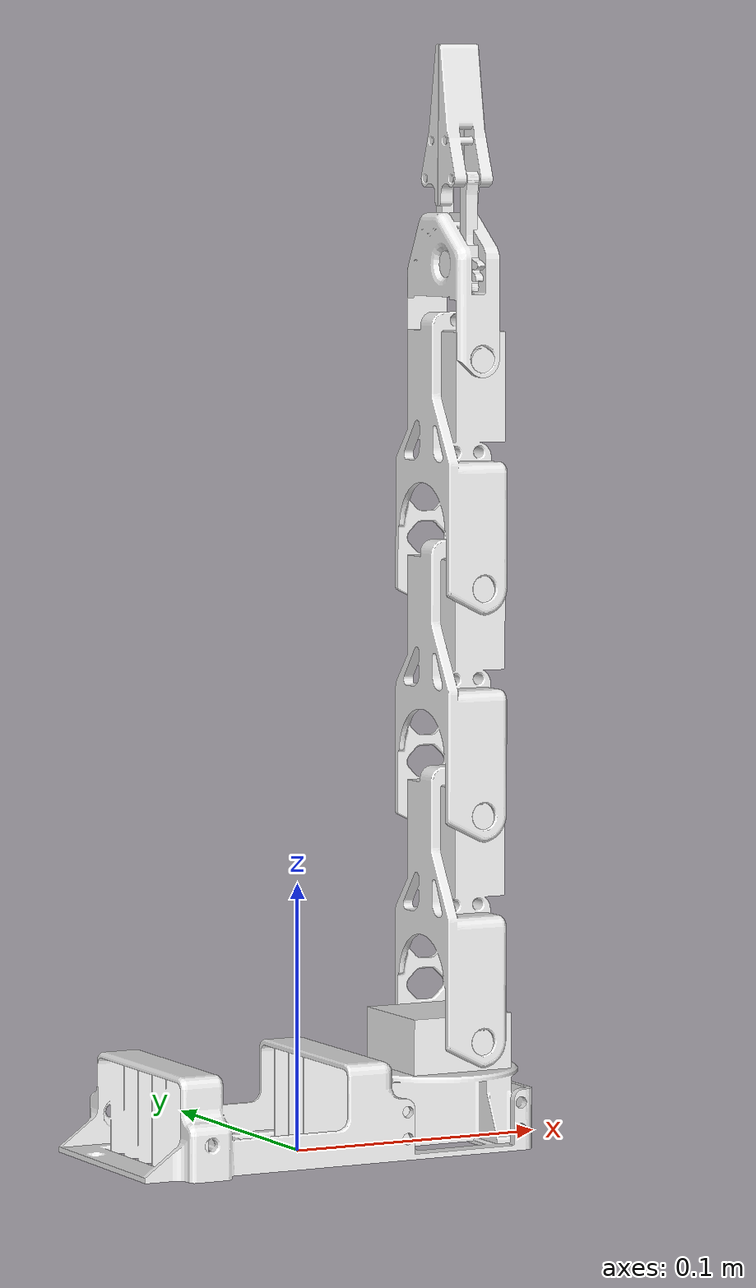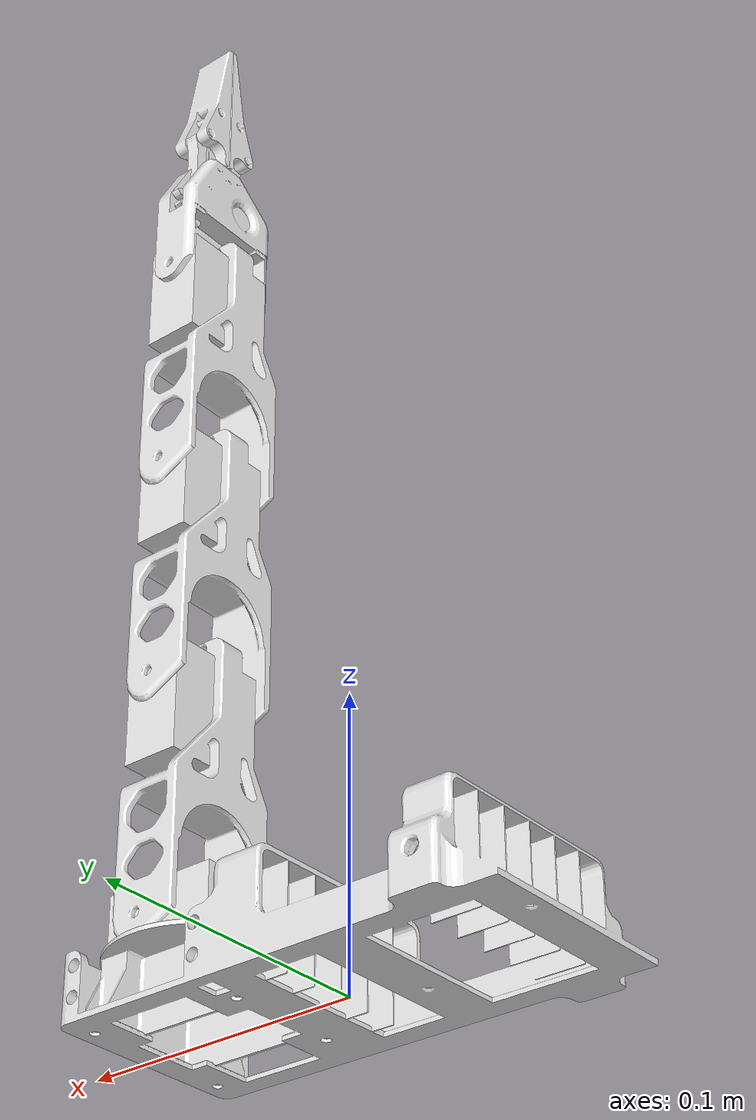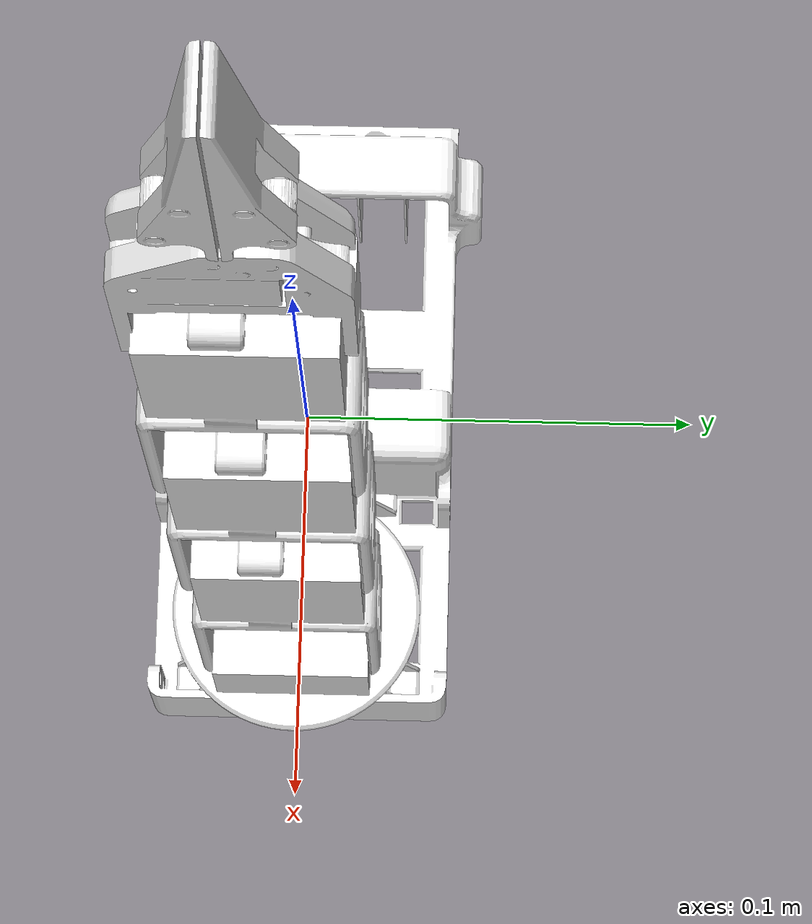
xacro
<?xml version="1.0"?>
<!-- 5 DOF Revolute Manipulator -->
<robot xmlns:xacro="http://www.ros.org/wiki/xacro" name="rarm" >

  <xacro:property name="PI" value="3.1415926535897931"/>
  <xacro:property name="mass" value="1" />        <!-- arbitrary value for mass -->
  <xacro:property name="b_length" value="0.1609" />  <!-- base length -->
  <xacro:property name="b_width" value="0.089" />  <!-- base width -->
  <xacro:property name="b_height" value="0.0369" /> <!-- base height -->

  <xacro:property name="radius" value="0.031" />  <!-- platform radius -->
  <xacro:property name="plat_h" value="0.027" />   <!-- platform height -->

  <xacro:property name="l1l" value="0.041" />     <!-- manipulator link1 length -->
  <xacro:property name="l1w" value="0.038" />     <!-- manipulator link1 width -->
  <xacro:property name="l1h" value="0.021" />     <!-- manipulator link1 height -->

  <xacro:property name="shift" value="0.005" />   <!-- links mesh displacement -->

  <xacro:property name="length" value="0.09" />   <!-- manipulator links length -->
  <xacro:property name="width" value="0.0436" />  <!-- manipulator links width -->
  <xacro:property name="height" value="0.025" />  <!-- manipulator links height -->

  <xacro:property name="grip_l" value="0.049" />  <!-- gripper servo's link length -->
  <xacro:property name="grip_w" value="0.024" />  <!-- gripper servo's link width -->
  <xacro:property name="grip_h" value="0.0168" /> <!-- gripper servo's link height -->

  <xacro:property name="finger0_l" value="0.0459" />    <!-- gripper link0 length -->
  <xacro:property name="finger0_w" value="0.018" />     <!-- gripper link0 width -->
  <xacro:property name="finger0_h" value="0.0049" />    <!-- gripper link0 height -->

  <xacro:property name="finger1_l" value="0.06" />      <!-- gripper link1 length -->
  <xacro:property name="finger1_w" value="0.013" />     <!-- gripper link1 width -->
  <xacro:property name="finger1_h" value="0.016" />     <!-- gripper link1 height -->

  <xacro:property name="grip_jnt_0_x" value="0.007" />  <!-- gripper's joint_0 x-axis displacement -->
  <xacro:property name="grip_jnt_1_x" value="0.013" />  <!-- gripper's joint_1 x-axis displacement -->
  <xacro:property name="grip_jnt_1_y" value="0.002" />  <!-- gripper's joint_1 y-axis displacement -->

  <!-- Import all Gazebo-customization elements, including Gazebo colors -->
  <xacro:include filename="$(find rarm_description)/urdf/rarm.gazebo" />

  <!-- Used for fixing robot to Gazebo 'base_link' -->
  <link name="world"/>

  <!-- Base Link -->
  <link name="base">
    <collision>
      <origin xyz="0 0 ${b_height/2}" rpy="0 0 0"/>
      <geometry>
	<box size="${b_length} ${b_width} ${b_height}"/>
      </geometry>
    </collision>

    <visual>
      <origin xyz="0 0 ${b_height/2}" rpy="0 0 0"/>
      <geometry>
	<!-- box size="${b_length} ${b_width} ${b_height}"/ -->
        <mesh filename="package://rarm_description/meshes/base.dae" scale="0.001 0.001 0.001"/>
      </geometry>
    </visual>

    <inertial>
      <origin xyz="0 0 ${b_height/2}" rpy="0 0 0"/>
      <mass value="${mass}"/>
      <inertia
	  ixx="1.0" ixy="0.0" ixz="0.0"
	  iyy="1.0" iyz="0.0"
	  izz="1.0"/>
    </inertial>
  </link>

  <joint name="fixed1" type="fixed">
    <parent link="world"/>
    <child link="base"/>
  </joint>

  <link name="platform">
    <collision>
    <origin xyz="0 0 0" rpy="0 0 0"/>
      <geometry>
        <cylinder radius="${radius}" length="${plat_h}"/>
      </geometry>
    </collision>

    <visual>
      <origin xyz="-0.006 0 0" rpy="0 0 0"/>
      <geometry>
	<!-- cylinder radius="${radius}" length="${plat_h}"/ -->
        <mesh filename="package://rarm_description/meshes/platform.dae" scale="0.001 0.001 0.001"/>
      </geometry>
    </visual>

    <inertial>
      <origin xyz="0 0 0" rpy="0 0 0"/>
      <mass value="${mass}"/>
      <inertia
	  ixx="1.0" ixy="0.0" ixz="0.0"
	  iyy="1.0" iyz="0.0"
	  izz="1.0"/>
    </inertial>
  </link>

  <joint name="fixed2" type="fixed">
    <axis xyz="0 0 1"/>
    <parent link="base"/>
    <child link="platform"/>
    <origin xyz="${b_length/2 - radius + 0.010} 0 ${b_height/2 - 0.004}" rpy="0 0 0"/>
    <!-- limit effort="100" velocity="100" / -->
    <!-- joint_properties damping="0.0" friction="0.0" / -->
  </joint>

<!-- Manipulator block -->
  <link name="link1">
    <collision>
      <origin xyz="0 0 0" rpy="0 ${PI/2} 0"/>
      <geometry>
	<box size="${l1h} ${l1w} ${l1l}"/>
      </geometry>
    </collision>

    <visual>
      <origin xyz="0 0 0" rpy="0 0 0"/>
      <geometry>
	<!-- box size="${l1h} ${l1w} ${l1l}"/ -->
        <mesh filename="package://rarm_description/meshes/servo.dae" scale="0.001 0.001 0.001"/>
      </geometry>
    </visual>

    <inertial>
      <origin xyz="0 0 0" rpy="0 ${PI/2} 0"/>
      <mass value="${mass}"/>
      <inertia
	  ixx="1.0" ixy="0.0" ixz="0.0"
	  iyy="1.0" iyz="0.0"
	  izz="1.0"/>
    </inertial>
  </link>

  <joint name="joint1" type="revolute">
    <axis xyz="0 0 1"/>
    <parent link="platform"/>
    <child link="link1"/>
    <origin xyz="0 0 ${l1h/2 + plat_h/2}" rpy="0 0 0"/>
    <limit lower="${-pi*3/4}" upper="${pi*3/4}" effort="1000" velocity="10" />
    <joint_properties damping="0.0" friction="0.0" />
  </joint>

  <link name="link2">
    <collision>
      <origin xyz="${length/2} 0 0" rpy="${PI/2} 0 0"/>
      <geometry>
	<box size="${length} ${width} ${height}"/>
      </geometry>
    </collision>

    <visual>
      <origin xyz="${length/2 + 0.002} -0.002 0" rpy="${PI/2} 0 0"/>
      <geometry>
	<!-- box size="${length} ${width} ${height}"/ -->
        <mesh filename="package://rarm_description/meshes/links.dae" scale="0.001 0.001 0.001"/>
      </geometry>
    </visual>

    <inertial>
      <origin xyz="${length/2} 0 0" rpy="${PI/2} 0 0"/>
      <mass value="${mass}"/>
      <inertia
	  ixx="1.0" ixy="0.0" ixz="0.0"
	  iyy="1.0" iyz="0.0"
	  izz="1.0"/>
    </inertial>
  </link>

  <joint name="joint2" type="revolute">
    <axis xyz="0 0 1"/>
    <parent link="link1"/>
    <child link="link2"/>
    <origin xyz="0.007 0 0" rpy="${-PI/2} ${-PI/2} 0"/>
    <limit lower="${-pi*3/4}" upper="${pi*3/4}" effort="1000" velocity="10" />
    <joint_properties damping="0.0" friction="0.0" />
  </joint>

  <link name="link3">
    <collision>
      <origin xyz="${length/2} 0 0" rpy="${PI/2} 0 0"/>
      <geometry>
	<box size="${length} ${width} ${height}"/>
      </geometry>
    </collision>

    <visual>
      <origin xyz="${length/2 + 0.002} -0.002 0" rpy="${PI/2} 0 0"/>
      <geometry>
	<!-- box size="${length} ${width} ${height}"/ -->
        <mesh filename="package://rarm_description/meshes/links.dae" scale="0.001 0.001 0.001"/>
      </geometry>
    </visual>

    <inertial>
      <origin xyz="${length/2} 0 0" rpy="${PI/2} 0 0"/>
      <mass value="${mass}"/>
      <inertia
	  ixx="1.0" ixy="0.0" ixz="0.0"
	  iyy="1.0" iyz="0.0"
	  izz="1.0"/>
    </inertial>
  </link>

  <joint name="joint3" type="revolute">
    <axis xyz="0 0 1"/>
    <parent link="link2"/>
    <child link="link3"/>
    <origin xyz="${length - shift} 0 0" rpy="0 0 0"/>
    <limit lower="${-pi*3/4}" upper="${pi*3/4}" effort="1000" velocity="10" />
    <joint_properties damping="0.0" friction="0.0" />
  </joint>

  <link name="link4">
    <collision>
      <origin xyz="${length/2} 0 0" rpy="${PI/2} 0 0"/>
      <geometry>
	<box size="${length} ${width} ${height}"/>
      </geometry>
    </collision>

    <visual>
      <origin xyz="${length/2 + 0.002} -0.002 0" rpy="${PI/2} 0 0"/>
      <geometry>
	<!-- box size="${length} ${width} ${height}"/ -->
	<mesh filename="package://rarm_description/meshes/links.dae" scale="0.001 0.001 0.001"/>
      </geometry>
    </visual>

    <inertial>
      <origin xyz="${length/2} 0 0" rpy="${PI/2} 0 0"/>
      <mass value="${mass}"/>
      <inertia
	  ixx="1.0" ixy="0.0" ixz="0.0"
	  iyy="1.0" iyz="0.0"
	  izz="1.0"/>
    </inertial>
  </link>

  <joint name="joint4" type="revolute">
    <axis xyz="0 0 1"/>
    <parent link="link3"/>
    <child link="link4"/>
    <origin xyz="${length - shift} 0 0" rpy="0 0 0"/>
    <limit lower="${-pi*3/4}" upper="${pi*3/4}" effort="1000" velocity="10" />
    <joint_properties damping="0.0" friction="0.0" />
  </joint>

  <link name="link5">
    <collision>
     <origin xyz="${grip_l/2} 0 0" rpy="${PI/2} 0 0"/>
      <geometry>
	<box size="${grip_l} ${grip_w} ${grip_h}"/>
      </geometry>
    </collision>

    <visual>
      <origin xyz="${grip_l/2} -0.002 0" rpy="${PI/2} 0 0"/>
      <geometry>
	<!-- box size="${grip_l} ${grip_w} ${grip_h}"/ -->
        <mesh filename="package://rarm_description/meshes/gripper.dae" scale="0.001 0.001 0.001"/>
      </geometry>
    </visual>

    <inertial>
      <origin xyz="${grip_l/2} 0 0" rpy="${PI/2} 0 0"/>
      <mass value="${mass}"/>
      <inertia
	  ixx="1.0" ixy="0.0" ixz="0.0"
	  iyy="1.0" iyz="0.0"
	  izz="1.0"/>
    </inertial>
  </link>

  <joint name="joint5" type="revolute">
    <axis xyz="0 0 1"/>
    <parent link="link4"/>
    <child link="link5"/>
    <origin xyz="${length - shift} 0 0" rpy="0 0 0"/>
    <limit lower="${-pi*3/4}" upper="${pi*3/4}" effort="1000" velocity="10" />
    <joint_properties damping="0.0" friction="0.0" />
  </joint>

<!-- Gripper block -->
  <link name="finger_l0">
    <collision>
     <origin xyz="${finger0_l/2 - grip_jnt_0_x} 0 0" rpy="0 0 0"/>
      <geometry>
	<box size="${finger0_l} ${finger0_w} ${finger0_h}"/>
      </geometry>
    </collision>

    <visual>
      <origin xyz="${finger0_l/2 - grip_jnt_0_x} 0 0" rpy="0 0 0"/>
      <geometry>
	<!-- box size="${finger0_l} ${finger0_w} ${finger0_h}"/ -->
        <mesh filename="package://rarm_description/meshes/l_finger_0.dae" scale="0.001 0.001 0.001"/>
      </geometry>
    </visual>

    <inertial>
      <origin xyz="${finger0_l/2 - grip_jnt_0_x} 0 0" rpy="0 0 0"/>
      <mass value="${mass}"/>
      <inertia
	  ixx="1.0" ixy="0.0" ixz="0.0"
	  iyy="1.0" iyz="0.0"
	  izz="1.0"/>
    </inertial>
  </link>

<!-- Main gripper joint -->
  <joint name="gripper_joint" type="revolute">
    <axis xyz="0 0 1"/>
    <parent link="link5"/>
    <child link="finger_l0"/>
    <origin xyz="${grip_l/2 + grip_jnt_0_x} 0 ${grip_w/2}" rpy="${PI/2} 0 0"/>
    <limit lower="0.0" upper="${pi/2}" effort="1000" velocity="10" />
    <joint_properties damping="0.0" friction="0.0" />
  </joint>

  <link name="finger_r0">
    <collision>
     <origin xyz="${finger0_l/2 - grip_jnt_0_x} 0 0" rpy="0 0 0"/>
      <geometry>
	<box size="${finger0_l} ${finger0_w} ${finger0_h}"/>
      </geometry>
    </collision>

    <visual>
      <origin xyz="${finger0_l/2 - grip_jnt_0_x} 0 0" rpy="${PI} 0 0"/>
      <geometry>
	<!-- box size="${finger0_l} ${finger0_w} ${finger0_h}"/ -->
        <mesh filename="package://rarm_description/meshes/l_finger_0.dae" scale="0.001 0.001 0.001"/>
      </geometry>
    </visual>

    <inertial>
      <origin xyz="${finger0_l/2 - grip_jnt_0_x} 0 0" rpy="0 0 0"/>
      <mass value="${mass}"/>
      <inertia
	  ixx="1.0" ixy="0.0" ixz="0.0"
	  iyy="1.0" iyz="0.0"
	  izz="1.0"/>
    </inertial>
  </link>

<!-- First mimic right -->
  <joint name="grp_joint_r" type="revolute">
    <axis xyz="0 0 1"/>
    <parent link="link5"/>
    <child link="finger_r0"/>
    <origin xyz="${grip_l/2 + grip_jnt_0_x} 0 ${-grip_w/2}" rpy="${PI/2} 0 0"/>
    <limit lower="${-PI/2}" upper="0.0" effort="1000" velocity="10" />
    <mimic joint="gripper_joint" multiplier="-1" />
    <joint_properties damping="0.0" friction="0.0" />
  </joint>

  <link name="finger_l1">
    <collision>
     <origin xyz="${finger1_l/2} 0 0" rpy="0 0 0"/>
      <geometry>
	<box size="${finger1_l} ${finger1_w} ${finger1_h}"/>
      </geometry>
    </collision>

    <visual>
      <origin xyz="${finger1_l/2 - 0.01} -0.0032 0" rpy="0 0 0"/>
      <geometry>
	<!-- box size="${finger1_l} ${finger1_w} ${finger1_h}"/ -->
        <mesh filename="package://rarm_description/meshes/l_finger_1.dae" scale="0.001 0.001 0.001"/>
      </geometry>
    </visual>

    <inertial>
      <origin xyz="${finger1_l/2} 0 0" rpy="0 0 0"/>
      <mass value="${mass}"/>
      <inertia
	  ixx="1.0" ixy="0.0" ixz="0.0"
	  iyy="1.0" iyz="0.0"
	  izz="1.0"/>
    </inertial>
  </link>

<!-- Second mimic left -->
  <joint name="finger_joint_l" type="revolute">
    <axis xyz="0 0 1"/>
    <parent link="finger_l0"/>
    <child link="finger_l1"/>
    <origin xyz="${grip_l - grip_jnt_1_x} ${-grip_jnt_1_y} 0" rpy="0 0 0"/>
    <limit lower="${-PI/2}" upper="0.0" effort="1000" velocity="10" />
    <mimic joint="gripper_joint" multiplier="-1" />
    <joint_properties damping="0.0" friction="0.0" />
  </joint>

  <link name="finger_r1">
    <collision>
     <origin xyz="${finger1_l/2} 0 0" rpy="0 0 0"/>
      <geometry>
	<box size="${finger1_l} ${finger1_w} ${finger1_h}"/>
      </geometry>
    </collision>

    <visual>
      <origin xyz="${finger1_l/2 - 0.01} 0.0032 0" rpy="${PI} 0 0"/>
      <geometry>
	<!-- box size="${finger1_l} ${finger1_w} ${finger1_h}"/ -->
        <mesh filename="package://rarm_description/meshes/l_finger_1.dae" scale="0.001 0.001 0.001"/>
      </geometry>
    </visual>

    <inertial>
      <origin xyz="${finger1_l/2} 0 0" rpy="0 0 0"/>
      <mass value="${mass}"/>
      <inertia
	  ixx="1.0" ixy="0.0" ixz="0.0"
	  iyy="1.0" iyz="0.0"
	  izz="1.0"/>
    </inertial>
  </link>

<!-- Second mimic right -->
  <joint name="finger_joint_r" type="revolute">
    <axis xyz="0 0 1"/>
    <parent link="finger_r0"/>
    <child link="finger_r1"/>
    <origin xyz="${grip_l - grip_jnt_1_x} ${grip_jnt_1_y} 0" rpy="0 0 0"/>
    <limit lower="0.0" upper="${PI/2}" effort="1000" velocity="10" />
    <mimic joint="gripper_joint" multiplier="1" />
    <joint_properties damping="0.0" friction="0.0" />
  </joint>

<!-- Transmissions block -->
  <transmission name="tran1">
    <type>transmission_interface/SimpleTransmission</type>
    <joint name="joint1">
      <hardwareInterface>hardware_interface/EffortJointInterface</hardwareInterface>
    </joint>
    <actuator name="motor1">
      <hardwareInterface>hardware_interface/EffortJointInterface</hardwareInterface>
      <mechanicalReduction>1</mechanicalReduction>
    </actuator>
  </transmission>

  <transmission name="tran2">
    <type>transmission_interface/SimpleTransmission</type>
    <joint name="joint2">
      <hardwareInterface>hardware_interface/EffortJointInterface</hardwareInterface>
    </joint>
    <actuator name="motor2">
      <hardwareInterface>hardware_interface/EffortJointInterface</hardwareInterface>
      <mechanicalReduction>1</mechanicalReduction>
    </actuator>
  </transmission>

  <transmission name="tran3">
    <type>transmission_interface/SimpleTransmission</type>
    <joint name="joint3">
      <hardwareInterface>hardware_interface/EffortJointInterface</hardwareInterface>
    </joint>
    <actuator name="motor3">
      <hardwareInterface>hardware_interface/EffortJointInterface</hardwareInterface>
      <mechanicalReduction>1</mechanicalReduction>
    </actuator>
  </transmission>

  <transmission name="tran4">
    <type>transmission_interface/SimpleTransmission</type>
    <joint name="joint4">
      <hardwareInterface>hardware_interface/EffortJointInterface</hardwareInterface>
    </joint>
    <actuator name="motor4">
      <hardwareInterface>hardware_interface/EffortJointInterface</hardwareInterface>
      <mechanicalReduction>1</mechanicalReduction>
    </actuator>
  </transmission>

  <transmission name="tran5">
    <type>transmission_interface/SimpleTransmission</type>
    <joint name="joint5">
      <hardwareInterface>hardware_interface/EffortJointInterface</hardwareInterface>
    </joint>
    <actuator name="motor5">
      <hardwareInterface>hardware_interface/EffortJointInterface</hardwareInterface>
      <mechanicalReduction>1</mechanicalReduction>
    </actuator>
  </transmission>

  <transmission name="tran6">
    <type>transmission_interface/SimpleTransmission</type>
    <joint name="gripper_joint">
      <hardwareInterface>hardware_interface/EffortJointInterface</hardwareInterface>
    </joint>
    <actuator name="motor6">
      <hardwareInterface>hardware_interface/EffortJointInterface</hardwareInterface>
      <mechanicalReduction>1</mechanicalReduction>
    </actuator>
  </transmission>

  <transmission name="tran7">
    <type>transmission_interface/SimpleTransmission</type>
    <joint name="grp_joint_r">
      <hardwareInterface>hardware_interface/EffortJointInterface</hardwareInterface>
    </joint>
    <actuator name="motor7">
      <hardwareInterface>hardware_interface/EffortJointInterface</hardwareInterface>
      <mechanicalReduction>1</mechanicalReduction>
    </actuator>
  </transmission>

  <transmission name="tran8">
    <type>transmission_interface/SimpleTransmission</type>
    <joint name="finger_joint_l">
      <hardwareInterface>hardware_interface/EffortJointInterface</hardwareInterface>
    </joint>
    <actuator name="motor8">
      <hardwareInterface>hardware_interface/EffortJointInterface</hardwareInterface>
      <mechanicalReduction>1</mechanicalReduction>
    </actuator>
  </transmission>

  <transmission name="tran9">
    <type>transmission_interface/SimpleTransmission</type>
    <joint name="finger_joint_r">
      <hardwareInterface>hardware_interface/EffortJointInterface</hardwareInterface>
    </joint>
    <actuator name="motor9">
      <hardwareInterface>hardware_interface/EffortJointInterface</hardwareInterface>
      <mechanicalReduction>1</mechanicalReduction>
    </actuator>
  </transmission>

</robot>
